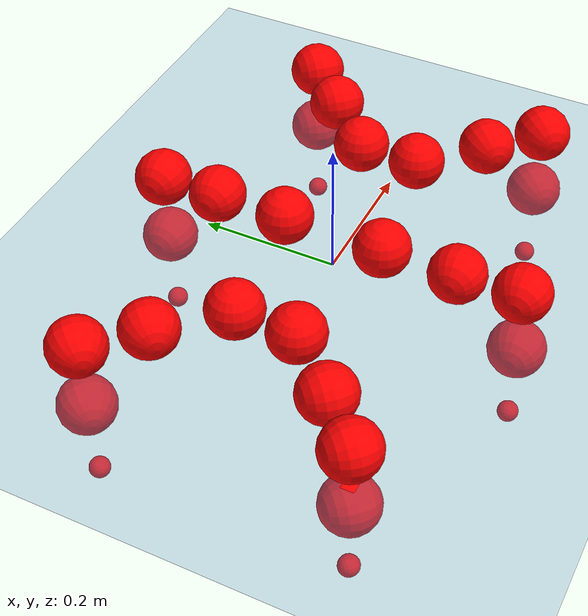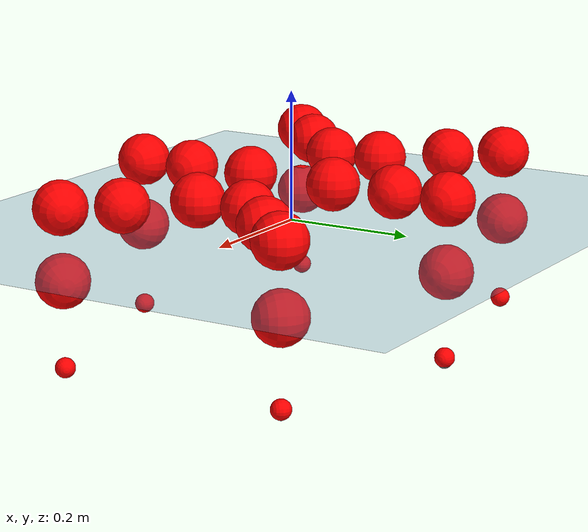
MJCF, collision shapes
<mujoco model="Golem">
  <compiler angle="radian" assetdir="assets" balanceinertia="true" inertiafromgeom="false"/>

  <option timestep="0.005" density="1.2" viscosity="2e-05"/>

  <size nkey="1"/>

  <visual>
    <quality shadowsize="8192"/>
    <map shadowclip="0.5"/>
  </visual>

  <default>
    <default class="/">
      <joint armature="0.01" damping="0.01" frictionloss="0.01"/>
      <geom contype="0" conaffinity="0" group="1" solref="-1000 -80"/>
      <site size="0.01 0.005 0.005" group="5"/>
      <general forcelimited="true" biastype="affine" gainprm="25" biasprm="0 -25 -0.5"/>
      <default class="visual">
        <geom type="mesh" group="2"/>
      </default>
      <default class="collision">
        <geom group="3"/>
      </default>
      <default class="foot">
        <geom size="0.01 0 0" condim="6" group="4" priority="1" solimp="0.015 1 0.01"/>
      </default>
      <default class="reward_collision_sphere">
        <geom group="5" rgba="1 0 0 1"/>
      </default>
    </default>
  </default>

  <asset>
    <texture type="skybox" colorspace="auto" name="//unnamed_texture_0" builtin="gradient" rgb1="0.95 0.95 0.95" rgb2="0.95 0.95 0.95" width="100" height="600"/>
    <texture type="2d" colorspace="auto" name="texplane" builtin="checker" rgb1="0.345 0.575 0.748" rgb2="0.345 0.575 0.748" markrgb="1 1 1" width="512" height="512"/>
    <material name="MatPlane" class="/" texture="texplane" texuniform="true" texrepeat="2 2" specular="0.9"/>
    <mesh name="body" class="/" file="body.stl" scale="0.001 0.001 0.001"/>
    <mesh name="coxa" class="/" file="coxa.stl" scale="0.001 0.001 0.001"/>
    <mesh name="femur" class="/" file="femur.stl" scale="0.001 0.001 0.001"/>
    <mesh name="tibia" class="/" file="tibia.stl" scale="0.001 0.001 0.001"/>
    <mesh name="tarsus" class="/" file="tarsus.stl" scale="0.001 0.001 0.001"/>
  </asset>

  <worldbody>
    <geom name="floor" class="/" size="100 100 0.125" type="plane" group="0" material="MatPlane"/>
    <light name="toplight_shadow" class="/" pos="0 0 5" dir="0.0990148 0.0990148 -0.990148" type="directional" ambient="0.04 0.04 0.04" diffuse="0.55 0.55 0.55" specular="0.12 0.12 0.12"/>
    <light name="toplight_fill" class="/" pos="0 0 5" dir="0.0990148 0.0990148 -0.990148" type="directional" castshadow="false" ambient="0.04 0.04 0.04" diffuse="0.3 0.3 0.3" specular="0.08 0.08 0.08"/>
    <body name="trunk" pos="-0.00057011 0.000187229 0.000402925" quat="1 -0.000103643 1.83312e-05 1.8134e-05">
      <inertial pos="0.000337845 0.000889805 -0.00488856" quat="0.999943 -0.00286378 0.000358864 -0.0103224" mass="3.99974" diaginertia="0.0282568 0.00411338 0.0106379"/>
      <joint name="//unnamed_joint_0" type="free"/>
      <geom name="//unnamed_geom_1" class="/" pos="0 0 0.064789" quat="1 0 0 0" type="mesh" rgba="0.9 0.9 0.9 1" mesh="body"/>
      <site name="imu" class="/" pos="0.156179 0.00517333 0.104161" size="0.0102569"/>
      <camera name="track" class="/" pos="0 -1.67598 0" quat="0.707107 0.707107 0 0" mode="trackcom"/>
      <camera name="ego_camera" class="/" pos="0.159478 0 0.101233" quat="-0.5 -0.5 0.5 0.5"/>
      <body name="coxa_RR" pos="-0.217822 -0.0683381 0.0638236" quat="0.382776 0.000127402 -3.8646e-05 -0.923841">
        <inertial pos="0.00074343 -8.96984e-05 0.00108267" quat="0.999999 0.00139141 0.000341494 -0.000183854" mass="0.213267" diaginertia="0.0280174 0.00406575 0.0104771"/>
        <joint name="coxa_joint_RR" class="/" pos="0 0 0" axis="-0.00113367 -0.00274448 -0.999996" range="-3.12352 3.18121" armature="0.0105493" damping="0.0120284" frictionloss="0.0103185"/>
        <geom name="//unnamed_geom_2" class="/" type="mesh" rgba="0.2 0.2 0.2 1" mesh="coxa"/>
        <geom name="//unnamed_geom_3" class="reward_collision_sphere" size="0.0410276" pos="-0.0368025 0 0"/>
        <body name="femur_RR" pos="0.0725374 0.00244294 0.00166532" quat="0.499979 -0.499988 0.500023 0.50001">
          <inertial pos="0.000942598 0.00202179 0.00240075" quat="0.999996 0.00146623 0.00222272 -0.000418318" mass="0.215934" diaginertia="0.0281837 0.00408989 0.0109357"/>
          <joint name="femur_joint_RR" class="/" pos="0 0 0" axis="0.00403874 -0.00190831 -0.99999" range="-3.14724 3.14169" armature="0.00971574" damping="0.00710652" frictionloss="0.0115057"/>
          <geom name="//unnamed_geom_4" class="/" type="mesh" rgba="0.9 0.9 0.9 1" mesh="femur"/>
          <geom name="//unnamed_geom_5" class="reward_collision_sphere" size="0.0410276"/>
          <body name="tibia_RR" pos="0.000311128 -0.0888 -0.00219877" quat="-0.000309514 1 0.000106298 -5.40267e-05">
            <inertial pos="-0.000234227 -0.00218249 0.000567622" quat="0.999997 -0.000810051 -0.000106087 0.00208912" mass="0.214099" diaginertia="0.0280097 0.00413121 0.0106461"/>
            <joint name="tibia_joint_RR" class="/" pos="0 0 0" axis="0.00084325 -0.000188804 1" range="-3.13823 3.14127" armature="0.0104692" damping="0.0156698" frictionloss="0.0101326"/>
            <geom name="//unnamed_geom_6" class="/" type="mesh" rgba="0.2 0.2 0.2 1" mesh="tibia"/>
            <geom name="//unnamed_geom_7" class="reward_collision_sphere" size="0.0410276"/>
            <body name="tarsus_RR" pos="0.105453 0.000660623 -6.09233e-05" quat="1 -0.000194799 0.000106674 -9.85658e-05">
              <inertial pos="0.0739838 0.000534635 -0.000412534" quat="0.500692 0.499675 0.499518 0.500114" mass="0.219839" diaginertia="0.0286693 0.00420717 0.0106636"/>
              <joint name="tarsus_joint_RR" class="/" pos="0 0 0" axis="-0.00330203 -0.00192487 0.999993" range="-3.18729 3.18751" armature="0.0105264" damping="0" frictionloss="0.0102812"/>
              <geom name="//unnamed_geom_8" class="/" type="mesh" rgba="0.9 0.9 0.9 1" mesh="tarsus"/>
              <geom name="foot_1" class="foot" size="0.0104496" pos="0.137396 0 0" quat="0 -0.707107 0 0.707107"/>
              <geom name="//unnamed_geom_10" class="reward_collision_sphere" size="0.0410276"/>
              <geom name="//unnamed_geom_11" class="reward_collision_sphere" size="0.0153853" pos="0.131876 0 0"/>
              <site name="foot_1" class="foot" pos="0.137396 0 0" quat="0 -0.707107 0 0.707107" size="0.0102569"/>
            </body>
          </body>
        </body>
      </body>
      <body name="coxa_RM" pos="-0.0022494 -0.112227 0.0641179" quat="0.707256 -0.000184435 -0.000240421 -0.706957">
        <inertial pos="0.000709548 0.000116262 0.000969605" quat="0.999933 -0.0105634 -0.00221137 0.00427365" mass="0.219626" diaginertia="0.0279572 0.00413252 0.0108261"/>
        <joint name="coxa_joint_RM" class="/" pos="0 0 0" axis="0.00173473 0.00492612 -0.999986" range="-3.12849 3.13482" armature="0.0101643" damping="0.0102323" frictionloss="0.010144"/>
        <geom name="//unnamed_geom_12" class="/" type="mesh" rgba="0.2 0.2 0.2 1" mesh="coxa"/>
        <geom name="//unnamed_geom_13" class="reward_collision_sphere" size="0.0410276" pos="-0.0368025 0 0"/>
        <body name="femur_RM" pos="0.072563 -0.000440213 -0.00224434" quat="0.500624 -0.50008 0.499231 0.500064">
          <inertial pos="-0.00221388 1.46982e-05 -0.00243414" quat="0.999998 -0.00147552 0.00106291 -0.000339224" mass="0.21998" diaginertia="0.0276712 0.00412632 0.0105334"/>
          <joint name="femur_joint_RM" class="/" pos="0 0 0" axis="-0.000395292 -0.000820131 -1" range="-3.15709 3.18091" armature="0.00972141" damping="0.00840463" frictionloss="0.00928615"/>
          <geom name="//unnamed_geom_14" class="/" type="mesh" rgba="0.9 0.9 0.9 1" mesh="femur"/>
          <geom name="//unnamed_geom_15" class="reward_collision_sphere" size="0.0410276"/>
          <body name="tibia_RM" pos="-0.000673056 -0.0900585 0.00213008" quat="9.1722e-05 1 5.13472e-05 0.000223089">
            <inertial pos="0.000372212 -0.00111498 -0.000455483" quat="1 -0.000189451 -0.000559171 9.1197e-05" mass="0.214704" diaginertia="0.0276623 0.00407931 0.0105339"/>
            <joint name="tibia_joint_RM" class="/" pos="0 0 0" axis="-0.00356484 -0.0091725 0.999952" range="-3.15917 3.10413" armature="0.0103801" damping="0" frictionloss="0.00988476"/>
            <geom name="//unnamed_geom_16" class="/" type="mesh" rgba="0.2 0.2 0.2 1" mesh="tibia"/>
            <geom name="//unnamed_geom_17" class="reward_collision_sphere" size="0.0410276"/>
            <body name="tarsus_RM" pos="0.105593 0.00180465 -0.00174892" quat="1 3.41397e-06 1.67539e-05 2.63367e-05">
              <inertial pos="0.0747539 6.85329e-05 0.000837578" quat="0.49865 0.498516 0.498267 0.504539" mass="0.212617" diaginertia="0.027498 0.00407657 0.0101837"/>
              <joint name="tarsus_joint_RM" class="/" pos="0 0 0" axis="-0.00231124 -0.00357618 0.999991" range="-3.17531 3.09318" armature="0.010186" damping="0.00163382" frictionloss="0.010699"/>
              <geom name="//unnamed_geom_18" class="/" type="mesh" rgba="0.9 0.9 0.9 1" mesh="tarsus"/>
              <geom name="foot_2" class="foot" size="0.00992295" pos="0.137396 0 0" quat="0 -0.707107 0 0.707107"/>
              <geom name="//unnamed_geom_20" class="reward_collision_sphere" size="0.0410276"/>
              <geom name="//unnamed_geom_21" class="reward_collision_sphere" size="0.0153853" pos="0.131876 0 0"/>
              <site name="foot_2" class="foot" pos="0.137396 0 0" quat="0 -0.707107 0 0.707107" size="0.0102569"/>
            </body>
          </body>
        </body>
      </body>
      <body name="coxa_RF" pos="0.216519 -0.0701206 0.0633499" quat="0.923868 4.12154e-05 0.000209898 -0.382712">
        <inertial pos="-0.00083574 -0.00252689 -0.000217842" quat="0.999987 0.00111385 -0.000879009 -0.00480153" mass="0.218139" diaginertia="0.028114 0.00410359 0.0105459"/>
        <joint name="coxa_joint_RF" class="/" pos="0 0 0" axis="-0.000425748 -0.000503254 -1" range="-3.13882 3.15133" armature="0.0100336" damping="0" frictionloss="0.0104218"/>
        <geom name="//unnamed_geom_22" class="/" type="mesh" rgba="0.2 0.2 0.2 1" mesh="coxa"/>
        <geom name="//unnamed_geom_23" class="reward_collision_sphere" size="0.0410276" pos="-0.0368025 0 0"/>
        <body name="femur_RF" pos="0.0746021 0.000120873 -0.00202443" quat="0.499952 -0.500079 0.500094 0.499875">
          <inertial pos="0.000149038 2.91499e-06 0.00141889" quat="0.999989 -0.0027608 -0.000633714 -0.00386422" mass="0.212478" diaginertia="0.0279257 0.00399433 0.0105511"/>
          <joint name="femur_joint_RF" class="/" pos="0 0 0" axis="0.000823105 0.000446942 -1" range="-3.09765 3.12483" armature="0.0103035" damping="0.00716034" frictionloss="0.00977051"/>
          <geom name="//unnamed_geom_24" class="/" type="mesh" rgba="0.9 0.9 0.9 1" mesh="femur"/>
          <geom name="//unnamed_geom_25" class="reward_collision_sphere" size="0.0410276"/>
          <body name="tibia_RF" pos="-0.00201525 -0.0898302 -0.00118316" quat="-3.63227e-05 1 5.52659e-06 -3.87974e-05">
            <inertial pos="0.00082297 0.000649682 -8.11182e-05" quat="0.999932 0.00462591 -0.0099935 0.00372519" mass="0.22208" diaginertia="0.027463 0.00414717 0.0107094"/>
            <joint name="tibia_joint_RF" class="/" pos="0 0 0" axis="-0.00179951 0.00292204 0.999994" range="-3.13833 3.13806" armature="0.00996956" damping="0.00171349" frictionloss="0.00997808"/>
            <geom name="//unnamed_geom_26" class="/" type="mesh" rgba="0.2 0.2 0.2 1" mesh="tibia"/>
            <geom name="//unnamed_geom_27" class="reward_collision_sphere" size="0.0410276"/>
            <body name="tarsus_RF" pos="0.109057 -0.000756618 -0.00205964" quat="1 -4.43869e-05 3.6982e-05 2.78541e-05">
              <inertial pos="0.072897 -0.00180282 -0.000973079" quat="0.501748 0.496124 0.502858 0.499243" mass="0.208904" diaginertia="0.0276847 0.00404478 0.010537"/>
              <joint name="tarsus_joint_RF" class="/" pos="0 0 0" axis="-0.00704359 -0.00551328 0.99996" range="-3.16197 3.1384" armature="0.010238" damping="0.0171453" frictionloss="0.0107744"/>
              <geom name="//unnamed_geom_28" class="/" type="mesh" rgba="0.9 0.9 0.9 1" mesh="tarsus"/>
              <geom name="foot_3" class="foot" size="0.0101536" pos="0.137396 0 0" quat="0 -0.707107 0 0.707107"/>
              <geom name="//unnamed_geom_30" class="reward_collision_sphere" size="0.0410276"/>
              <geom name="//unnamed_geom_31" class="reward_collision_sphere" size="0.0153853" pos="0.131876 0 0"/>
              <site name="foot_3" class="foot" pos="0.137396 0 0" quat="0 -0.707107 0 0.707107" size="0.0102569"/>
            </body>
          </body>
        </body>
      </body>
      <body name="coxa_LR" pos="-0.217836 0.0725001 0.0674206" quat="0.382697 -7.06625e-07 0.00051914 0.923874">
        <inertial pos="0.000413392 0.000259232 0.00237653" quat="0.999997 -0.00169422 0.000225907 0.00172307" mass="0.215577" diaginertia="0.0274937 0.004051 0.0102051"/>
        <joint name="coxa_joint_LR" class="/" pos="0 0 0" axis="-0.00016735 0.000253506 -1" range="-3.12678 3.11973" armature="0.0106711" damping="0" frictionloss="0.00913058"/>
        <geom name="//unnamed_geom_32" class="/" type="mesh" rgba="0.2 0.2 0.2 1" mesh="coxa"/>
        <geom name="//unnamed_geom_33" class="reward_collision_sphere" size="0.0410276" pos="-0.0368025 0 0"/>
        <body name="femur_LR" pos="0.0748196 -0.0026259 -0.000364779" quat="0.500014 -0.499646 0.500405 0.499935">
          <inertial pos="0.00172895 0.00054736 0.000724752" quat="0.999987 -0.003909 0.00320853 0.000557599" mass="0.209777" diaginertia="0.0276824 0.0041567 0.0106202"/>
          <joint name="femur_joint_LR" class="/" pos="0 0 0" axis="0.00681077 0.000878485 0.999976" range="-3.1884 3.09788" armature="0.00916139" damping="0.00250508" frictionloss="0.0101568"/>
          <geom name="//unnamed_geom_34" class="/" type="mesh" rgba="0.9 0.9 0.9 1" mesh="femur"/>
          <geom name="//unnamed_geom_35" class="reward_collision_sphere" size="0.0410276"/>
          <body name="tibia_LR" pos="0.00105652 -0.092553 -0.00100169" quat="-0.000148649 1 -0.000150093 -6.98213e-06">
            <inertial pos="-0.000635066 -0.00162438 -0.000268262" quat="1 0.000351194 -0.000349691 6.81511e-05" mass="0.218938" diaginertia="0.027484 0.00420987 0.0105852"/>
            <joint name="tibia_joint_LR" class="/" pos="0 0 0" axis="-0.00636758 -0.0092621 -0.999937" range="-3.1385 3.10697" armature="0.0107959" damping="0" frictionloss="0.0100855"/>
            <geom name="//unnamed_geom_36" class="/" type="mesh" rgba="0.2 0.2 0.2 1" mesh="tibia"/>
            <geom name="//unnamed_geom_37" class="reward_collision_sphere" size="0.0410276"/>
            <body name="tarsus_LR" pos="0.110155 0.00111154 -0.000216756" quat="0.999999 0.000189834 0.00100626 -0.000371764">
              <inertial pos="0.0726369 -0.000958849 0.00130863" quat="0.500117 0.500185 0.499861 0.499837" mass="0.215986" diaginertia="0.0276124 0.00400837 0.0105535"/>
              <joint name="tarsus_joint_LR" class="/" pos="0 0 0" axis="-0.000932237 -0.00250732 -0.999996" range="-3.1431 3.14974" armature="0.00982544" damping="0.0265724" frictionloss="0.0112212"/>
              <geom name="//unnamed_geom_38" class="/" type="mesh" rgba="0.9 0.9 0.9 1" mesh="tarsus"/>
              <geom name="foot_4" class="foot" size="0.0104412" pos="0.137396 0 0" quat="0.707107 0 -0.707107 0"/>
              <geom name="//unnamed_geom_40" class="reward_collision_sphere" size="0.0410276"/>
              <geom name="//unnamed_geom_41" class="reward_collision_sphere" size="0.0153853" pos="0.131876 0 0"/>
              <site name="foot_4" class="foot" pos="0.137396 0 0" quat="0.707107 0 -0.707107 0" size="0.0102569"/>
            </body>
          </body>
        </body>
      </body>
      <body name="coxa_LM" pos="0.00044314 0.109987 0.0641181" quat="0.707111 -0.000116828 -0.000101124 0.707103">
        <inertial pos="0.00214397 7.82259e-05 -0.000391053" quat="0.999987 -0.000969068 -0.00493468 -0.00080742" mass="0.21127" diaginertia="0.028016 0.00403793 0.010514"/>
        <joint name="coxa_joint_LM" class="/" pos="0 0 0" axis="-0.004298 -0.00496203 -0.999978" range="-3.13245 3.13946" armature="0.0102408" damping="0" frictionloss="0.0102047"/>
        <geom name="//unnamed_geom_42" class="/" type="mesh" rgba="0.2 0.2 0.2 1" mesh="coxa"/>
        <geom name="//unnamed_geom_43" class="reward_collision_sphere" size="0.0410276" pos="-0.0368025 0 0"/>
        <body name="femur_LM" pos="0.0690698 0.000670758 0.00106331" quat="0.499975 -0.500026 0.500193 0.499806">
          <inertial pos="0.00016537 9.17034e-05 0.000234671" quat="0.999987 -0.00382703 0.000177532 0.00347554" mass="0.220273" diaginertia="0.0271295 0.00413669 0.0109424"/>
          <joint name="femur_joint_LM" class="/" pos="0 0 0" axis="-0.00234767 0.0142963 0.999895" range="-3.09758 3.152" armature="0.0108295" damping="0" frictionloss="0.0102562"/>
          <geom name="//unnamed_geom_44" class="/" type="mesh" rgba="0.9 0.9 0.9 1" mesh="femur"/>
          <geom name="//unnamed_geom_45" class="reward_collision_sphere" size="0.0410276"/>
          <body name="tibia_LM" pos="0.000377943 -0.0878385 0.00102728" quat="0.000231472 1 0.000127704 6.50232e-05">
            <inertial pos="-0.00212298 -0.000110605 -0.000172947" quat="0.999987 -0.00371741 0.00142232 -0.00329882" mass="0.215991" diaginertia="0.0279011 0.00417716 0.0106916"/>
            <joint name="tibia_joint_LM" class="/" pos="0 0 0" axis="0.00347923 2.59287e-05 -0.999994" stiffness="0.000495214" range="-3.16017 3.1529" armature="0.00988399" damping="0" frictionloss="0.00897343"/>
            <geom name="//unnamed_geom_46" class="/" type="mesh" rgba="0.2 0.2 0.2 1" mesh="tibia"/>
            <geom name="//unnamed_geom_47" class="reward_collision_sphere" size="0.0410276"/>
            <body name="tarsus_LM" pos="0.110391 -0.000302733 0.000549691" quat="1 0.000276097 -0.000251236 -0.000421142">
              <inertial pos="0.0723295 -0.000444828 -0.000202964" quat="0.498931 0.494623 0.50586 0.500522" mass="0.213793" diaginertia="0.0274706 0.00413148 0.0105398"/>
              <joint name="tarsus_joint_LM" class="/" pos="0 0 0" axis="-0.00737118 -0.000437181 -0.999973" stiffness="0.00234161" range="-3.11868 3.1383" armature="0.0097478" damping="0.00681791" frictionloss="0.0105077"/>
              <geom name="//unnamed_geom_48" class="/" type="mesh" rgba="0.9 0.9 0.9 1" mesh="tarsus"/>
              <geom name="foot_5" class="foot" size="0.0113191" pos="0.137396 0 0" quat="0.707107 0 -0.707107 0"/>
              <geom name="//unnamed_geom_50" class="reward_collision_sphere" size="0.0410276"/>
              <geom name="//unnamed_geom_51" class="reward_collision_sphere" size="0.0153853" pos="0.131876 0 0"/>
              <site name="foot_5" class="foot" pos="0.137396 0 0" quat="0.707107 0 -0.707107 0" size="0.0102569"/>
            </body>
          </body>
        </body>
      </body>
      <body name="coxa_LF" pos="0.217936 0.0704795 0.0634272" quat="0.923885 0.00022906 -0.000226927 0.38267">
        <inertial pos="-3.58902e-05 -0.0022655 0.000513569" quat="0.999956 0.00585972 0.000465311 -0.00729764" mass="0.219712" diaginertia="0.0285507 0.00429364 0.0110161"/>
        <joint name="coxa_joint_LF" class="/" pos="0 0 0" axis="-0.00248232 0.00298474 -0.999992" range="-3.1208 3.13618" armature="0.0100667" damping="0.0042078" frictionloss="0.00948851"/>
        <geom name="//unnamed_geom_52" class="/" type="mesh" rgba="0.2 0.2 0.2 1" mesh="coxa"/>
        <geom name="//unnamed_geom_53" class="reward_collision_sphere" size="0.0410276" pos="-0.0368025 0 0"/>
        <body name="femur_LF" pos="0.0706694 0.000124499 0.00117871" quat="0.499842 -0.500052 0.500011 0.500095">
          <inertial pos="-0.000537366 0.000173404 -0.00180982" quat="0.999992 0.00269987 -0.000593728 0.0029344" mass="0.216232" diaginertia="0.0274195 0.00412234 0.0104851"/>
          <joint name="femur_joint_LF" class="/" pos="0 0 0" axis="-0.00033895 0.00345119 0.999994" range="-3.1276 3.14113" armature="0.0105228" damping="0.00295562" frictionloss="0.0100972"/>
          <geom name="//unnamed_geom_54" class="/" type="mesh" rgba="0.9 0.9 0.9 1" mesh="femur"/>
          <geom name="//unnamed_geom_55" class="reward_collision_sphere" size="0.0410276"/>
          <body name="tibia_LF" pos="0.00010168 -0.090941 9.71653e-05" quat="-0.000210862 1 0.00017607 -5.40043e-05">
            <inertial pos="0.00210793 0.00231602 0.00242923" quat="0.999987 0.00302697 -0.000320299 -0.00418365" mass="0.216142" diaginertia="0.0280121 0.00415301 0.0109709"/>
            <joint name="tibia_joint_LF" class="/" pos="0 0 0" axis="0.00438827 -0.00503243 -0.999978" range="-3.12784 3.09626" armature="0.0105428" damping="0" frictionloss="0.0100965"/>
            <geom name="//unnamed_geom_56" class="/" type="mesh" rgba="0.2 0.2 0.2 1" mesh="tibia"/>
            <geom name="//unnamed_geom_57" class="reward_collision_sphere" size="0.0410276"/>
            <body name="tarsus_LF" pos="0.108708 0.000718107 -0.000921388" quat="1 2.03391e-05 0.000137341 -3.13403e-05">
              <inertial pos="0.0737354 0.000917293 0.0020663" quat="0.505513 0.499408 0.495135 0.499889" mass="0.216146" diaginertia="0.0284935 0.00414238 0.0109776"/>
              <joint name="tarsus_joint_LF" class="/" pos="0 0 0" axis="-0.000230057 -0.000161752 -1" range="-3.17135 3.09365" armature="0.0101506" damping="0.015998" frictionloss="0.0101762"/>
              <geom name="//unnamed_geom_58" class="/" type="mesh" rgba="0.9 0.9 0.9 1" mesh="tarsus"/>
              <geom name="foot_6" class="foot" size="0.0103628" pos="0.137396 0 0" quat="0.707107 0 -0.707107 0"/>
              <geom name="//unnamed_geom_60" class="reward_collision_sphere" size="0.0410276"/>
              <geom name="//unnamed_geom_61" class="reward_collision_sphere" size="0.0153853" pos="0.131876 0 0"/>
              <site name="foot_6" class="foot" pos="0.137396 0 0" quat="0.707107 0 -0.707107 0" size="0.0102569"/>
            </body>
          </body>
        </body>
      </body>
    </body>
  </worldbody>

  <contact>
    <pair class="/" geom1="floor" geom2="foot_1" name="//unnamed_contact_0"/>
    <pair class="/" geom1="floor" geom2="foot_2" name="//unnamed_contact_1"/>
    <pair class="/" geom1="floor" geom2="foot_3" name="//unnamed_contact_2"/>
    <pair class="/" geom1="floor" geom2="foot_4" name="//unnamed_contact_3"/>
    <pair class="/" geom1="floor" geom2="foot_5" name="//unnamed_contact_4"/>
    <pair class="/" geom1="floor" geom2="foot_6" name="//unnamed_contact_5"/>
  </contact>

  <actuator>
    <general name="coxa_joint_RR" class="/" joint="coxa_joint_RR" forcerange="-7.6901 7.6901" gainprm="25.8419" biasprm="0 -25.8419 -0.530394"/>
    <general name="femur_joint_RR" class="/" joint="femur_joint_RR" forcerange="-7.40109 7.40109" gainprm="25.8419" biasprm="0 -25.8419 -0.530394"/>
    <general name="tibia_joint_RR" class="/" joint="tibia_joint_RR" forcerange="-7.5052 7.5052" gainprm="25.8419" biasprm="0 -25.8419 -0.530394"/>
    <general name="tarsus_joint_RR" class="/" joint="tarsus_joint_RR" forcerange="-7.63748 7.63748" gainprm="25.8419" biasprm="0 -25.8419 -0.530394"/>
    <general name="coxa_joint_RM" class="/" joint="coxa_joint_RM" forcerange="-7.33481 7.33481" gainprm="25.8419" biasprm="0 -25.8419 -0.530394"/>
    <general name="femur_joint_RM" class="/" joint="femur_joint_RM" forcerange="-7.4031 7.4031" gainprm="25.8419" biasprm="0 -25.8419 -0.530394"/>
    <general name="tibia_joint_RM" class="/" joint="tibia_joint_RM" forcerange="-7.47164 7.47164" gainprm="25.8419" biasprm="0 -25.8419 -0.530394"/>
    <general name="tarsus_joint_RM" class="/" joint="tarsus_joint_RM" forcerange="-7.19311 7.19311" gainprm="25.8419" biasprm="0 -25.8419 -0.530394"/>
    <general name="coxa_joint_RF" class="/" joint="coxa_joint_RF" forcerange="-7.33513 7.33513" gainprm="25.8419" biasprm="0 -25.8419 -0.530394"/>
    <general name="femur_joint_RF" class="/" joint="femur_joint_RF" forcerange="-7.5175 7.5175" gainprm="25.8419" biasprm="0 -25.8419 -0.530394"/>
    <general name="tibia_joint_RF" class="/" joint="tibia_joint_RF" forcerange="-7.45042 7.45042" gainprm="25.8419" biasprm="0 -25.8419 -0.530394"/>
    <general name="tarsus_joint_RF" class="/" joint="tarsus_joint_RF" forcerange="-7.7229 7.7229" gainprm="25.8419" biasprm="0 -25.8419 -0.530394"/>
    <general name="coxa_joint_LR" class="/" joint="coxa_joint_LR" forcerange="-7.77467 7.77467" gainprm="25.8419" biasprm="0 -25.8419 -0.530394"/>
    <general name="femur_joint_LR" class="/" joint="femur_joint_LR" forcerange="-7.02477 7.02477" gainprm="25.8419" biasprm="0 -25.8419 -0.530394"/>
    <general name="tibia_joint_LR" class="/" joint="tibia_joint_LR" forcerange="-7.45864 7.45864" gainprm="25.8419" biasprm="0 -25.8419 -0.530394"/>
    <general name="tarsus_joint_LR" class="/" joint="tarsus_joint_LR" forcerange="-7.49987 7.49987" gainprm="25.8419" biasprm="0 -25.8419 -0.530394"/>
    <general name="coxa_joint_LM" class="/" joint="coxa_joint_LM" forcerange="-7.54488 7.54488" gainprm="25.8419" biasprm="0 -25.8419 -0.530394"/>
    <general name="femur_joint_LM" class="/" joint="femur_joint_LM" forcerange="-7.65185 7.65185" gainprm="25.8419" biasprm="0 -25.8419 -0.530394"/>
    <general name="tibia_joint_LM" class="/" joint="tibia_joint_LM" forcerange="-7.46727 7.46727" gainprm="25.8419" biasprm="0 -25.8419 -0.530394"/>
    <general name="tarsus_joint_LM" class="/" joint="tarsus_joint_LM" forcerange="-7.4743 7.4743" gainprm="25.8419" biasprm="0 -25.8419 -0.530394"/>
    <general name="coxa_joint_LF" class="/" joint="coxa_joint_LF" forcerange="-7.77649 7.77649" gainprm="25.8419" biasprm="0 -25.8419 -0.530394"/>
    <general name="femur_joint_LF" class="/" joint="femur_joint_LF" forcerange="-7.73061 7.73061" gainprm="25.8419" biasprm="0 -25.8419 -0.530394"/>
    <general name="tibia_joint_LF" class="/" joint="tibia_joint_LF" forcerange="-7.47054 7.47054" gainprm="25.8419" biasprm="0 -25.8419 -0.530394"/>
    <general name="tarsus_joint_LF" class="/" joint="tarsus_joint_LF" forcerange="-6.78744 6.78744" gainprm="25.8419" biasprm="0 -25.8419 -0.530394"/>
  </actuator>

  <sensor>
    <gyro site="imu" name="imu_angular_velocity"/>
    <velocimeter site="imu" name="imu_linear_velocity"/>
    <framelinvel objtype="site" objname="foot_1" name="foot_1_global_linear_velocity"/>
    <framelinvel objtype="site" objname="foot_2" name="foot_2_global_linear_velocity"/>
    <framelinvel objtype="site" objname="foot_3" name="foot_3_global_linear_velocity"/>
    <framelinvel objtype="site" objname="foot_4" name="foot_4_global_linear_velocity"/>
    <framelinvel objtype="site" objname="foot_5" name="foot_5_global_linear_velocity"/>
    <framelinvel objtype="site" objname="foot_6" name="foot_6_global_linear_velocity"/>
  </sensor>

  <keyframe>
    <key name="home" qpos="0 0 0.1457 1 0 0 0 0 0 0 0 0 0 0 0 0 0 0 0 0 0 0 0 0 0 0 0 0 0 0 0"/>
  </keyframe>
</mujoco>
